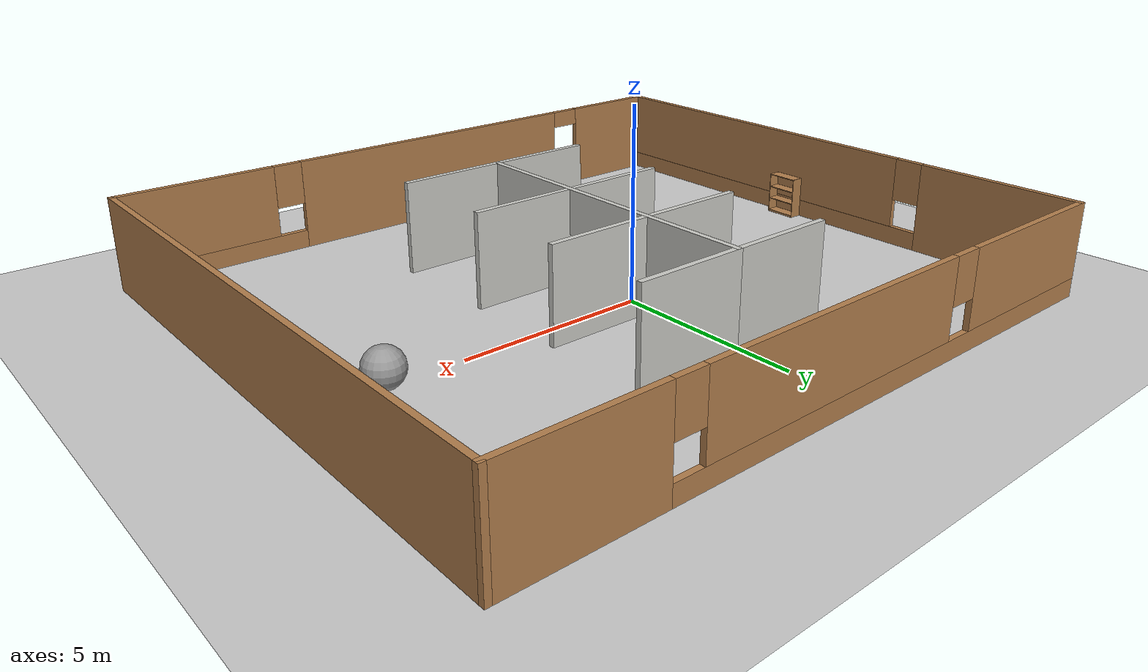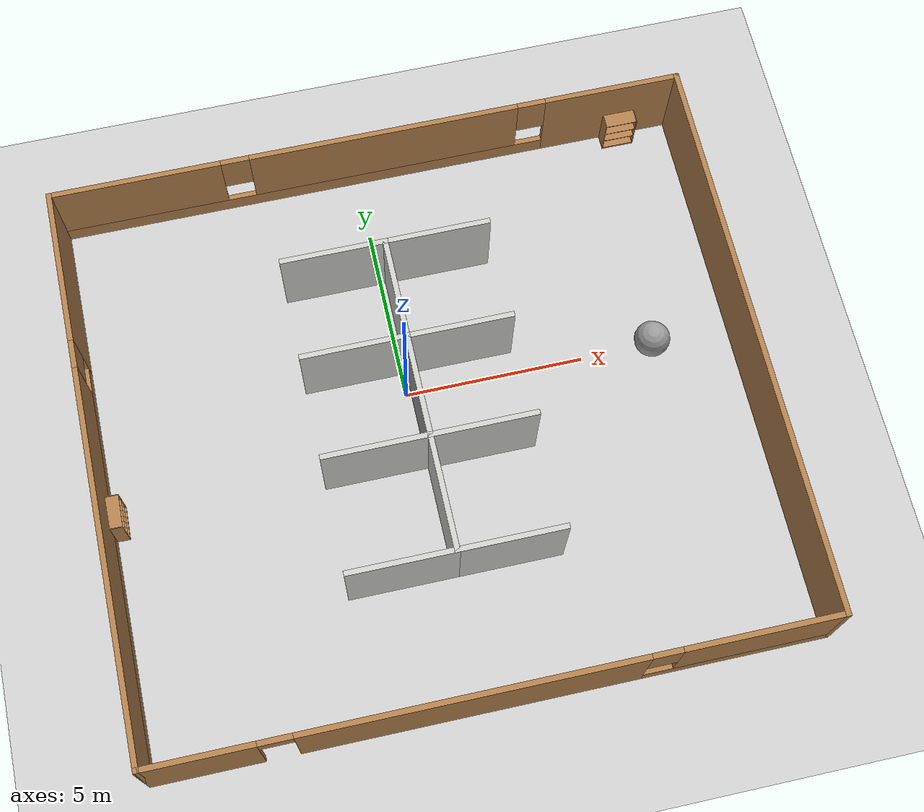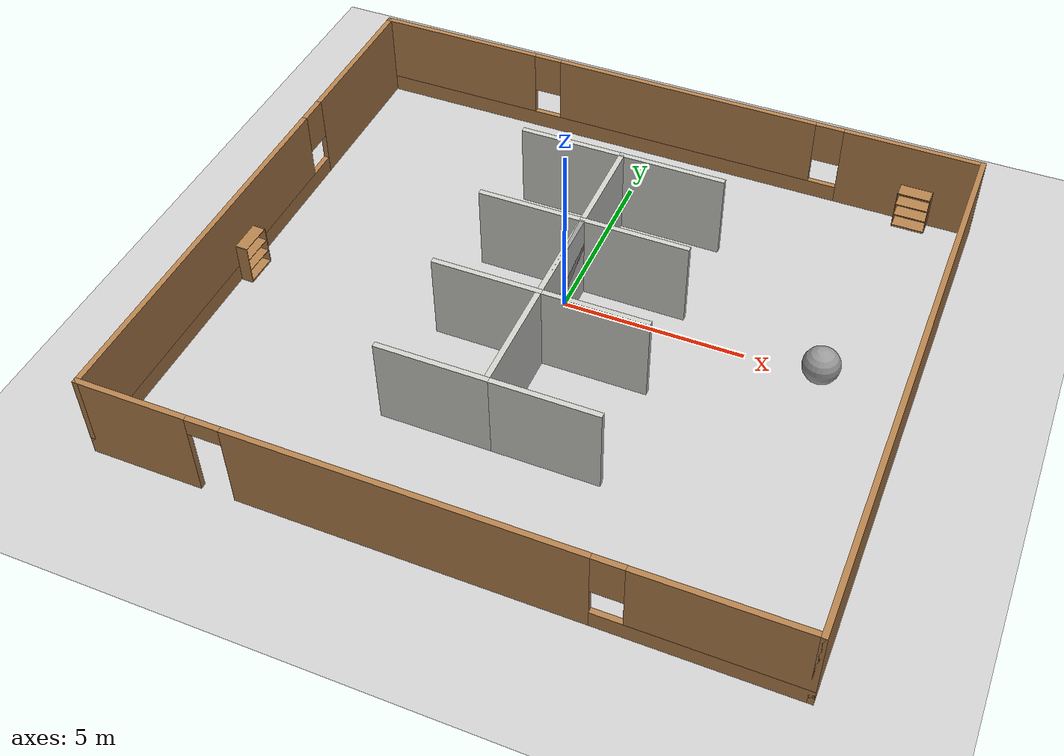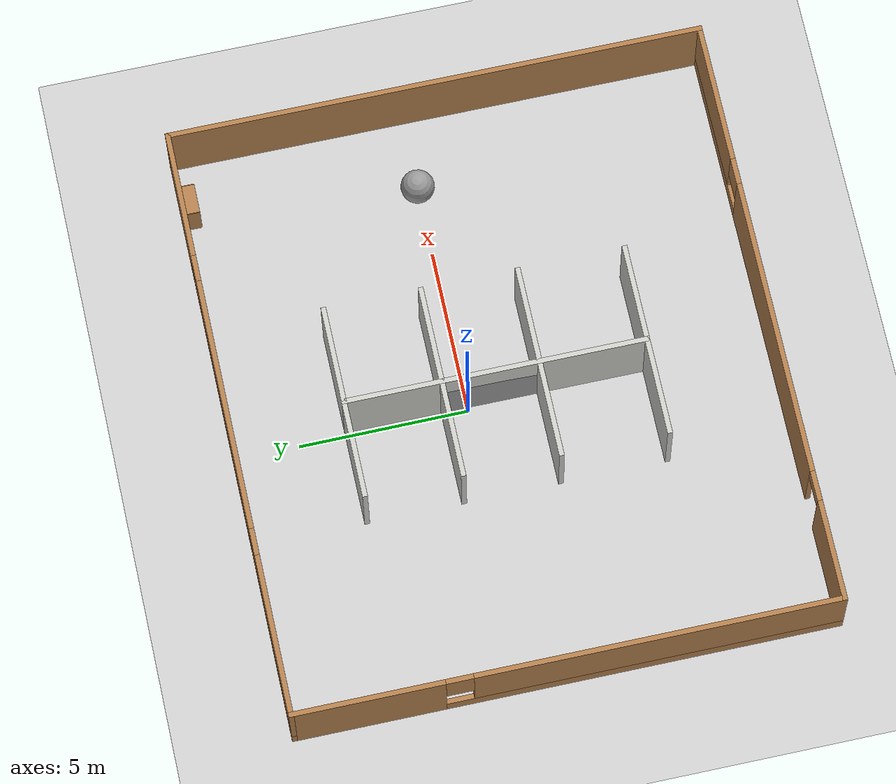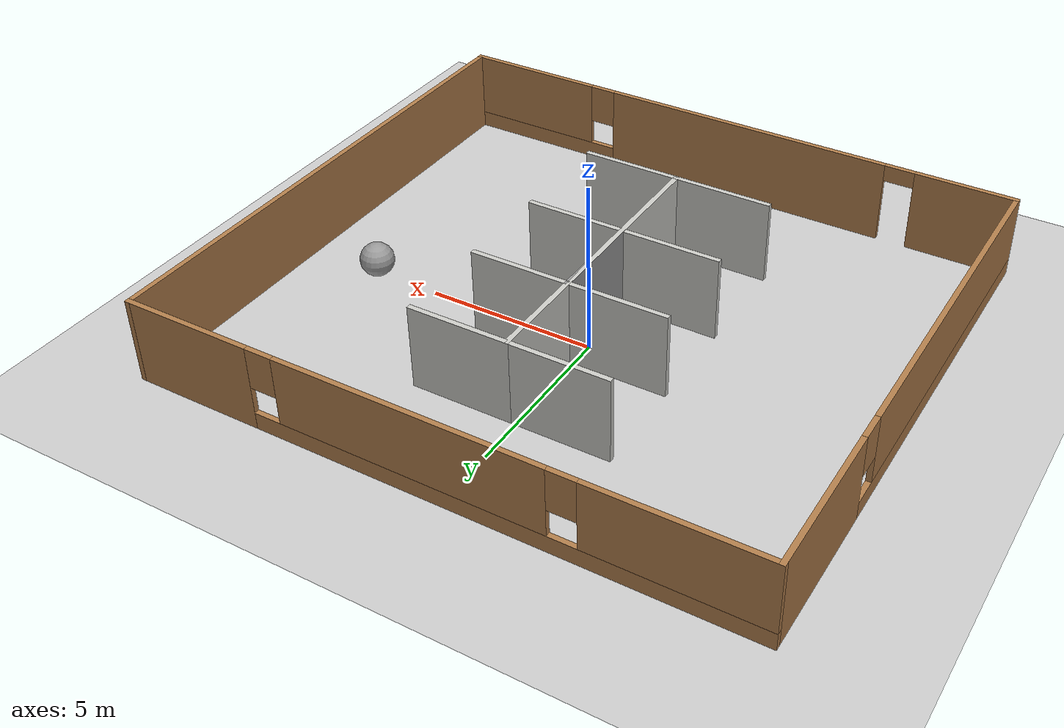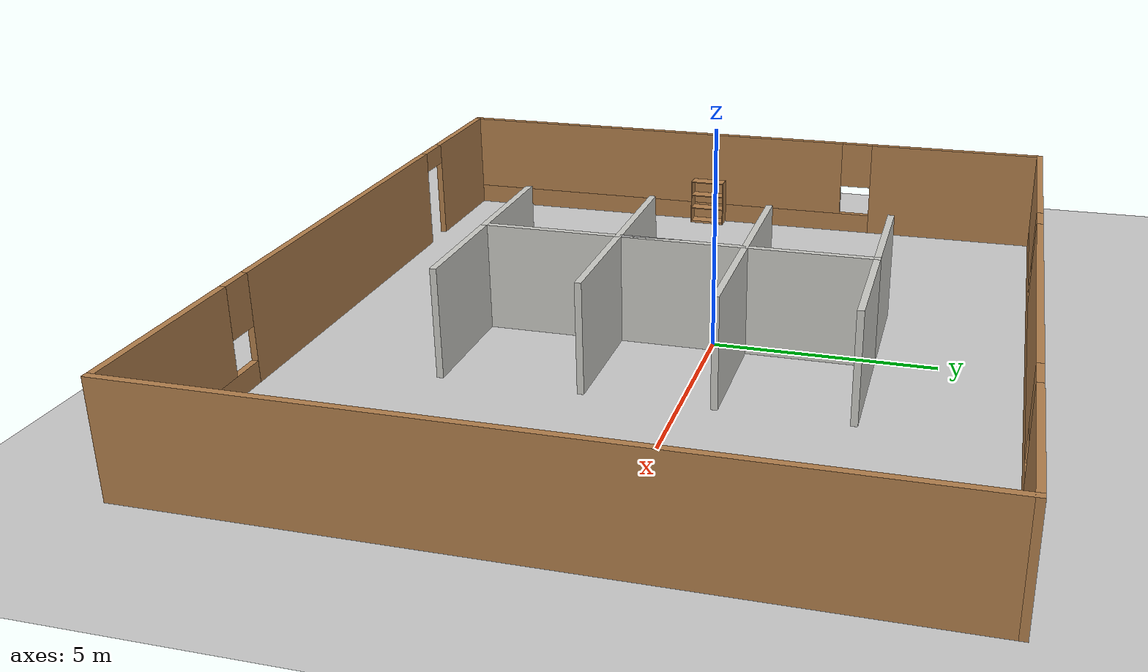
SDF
<sdf version="1.6">
 <world name="default">
  <light name="sun" type="directional">
   <pose>0 0 10 0 -0 0</pose>
   <diffuse>0.8 0.8 0.8 1</diffuse>
   <specular>0.1 0.1 0.1 1</specular>
   <attenuation>
    <range>1000</range>
    <constant>0.9</constant>
    <linear>0.01</linear>
    <quadratic>0.001</quadratic>
   </attenuation>
   <direction>-0.5 0.5 -1</direction>
  </light>
  <model name="ground_plane">
   <static>1</static>
   <link name="link">
    <collision name="collision">
     <geometry><plane><normal>0 0 1</normal><size>100 100</size></plane></geometry>
     <surface><friction><ode><mu>100</mu><mu2>50</mu2></ode></friction></surface>
    </collision>
    <visual name="visual">
     <cast_shadows>0</cast_shadows>
     <geometry><plane><normal>0 0 1</normal><size>100 100</size></plane></geometry>
     <material>
      <script><uri>file://media/materials/scripts/gazebo.material</uri><name>Gazebo/Grey</name></script>
     </material>
    </visual>
   </link>
  </model>
  <gravity>0 0 -9.8</gravity>
  <magnetic_field>6e-06 2.3e-05 -4.2e-05</magnetic_field>
  <atmosphere type="adiabatic"/>
  <physics name="default_physics" default="0" type="ode">
   <max_step_size>0.001</max_step_size>
   <real_time_factor>1</real_time_factor>
   <real_time_update_rate>1000</real_time_update_rate>
  </physics>
  <scene><ambient>0.4 0.4 0.4 1</ambient><background>0.7 0.7 0.7 1</background><shadows>1</shadows></scene>
  <spherical_coordinates>
   <surface_model>EARTH_WGS84</surface_model>
   <latitude_deg>0</latitude_deg>
   <longitude_deg>0</longitude_deg>
   <elevation>0</elevation>
   <heading_deg>0</heading_deg>
  </spherical_coordinates>
  <model name="lab">
   <pose>0.391716 -1.03345 0 0 -0 0</pose>
   <link name="Wall_14">
    <collision name="Wall_14_Collision">
     <geometry><box><size>9 0.15 2.5</size></box></geometry>
     <pose>0 0 1.25 0 -0 0</pose>
    </collision>
    <visual name="Wall_14_Visual">
     <pose>0 0 1.25 0 -0 0</pose>
     <geometry><box><size>9 0.15 2.5</size></box></geometry>
     <material>
      <script><uri>file://media/materials/scripts/gazebo.material</uri><name>Gazebo/CeilingTiled</name></script>
      <ambient>1 1 1 1</ambient>
     </material>
    </visual>
    <pose>-0.188866 0.174058 0 0 0 -1.5708</pose>
   </link>
   <link name="Wall_15">
    <collision name="Wall_15_Collision">
     <geometry><box><size>3 0.15 2.5</size></box></geometry>
     <pose>0 0 1.25 0 -0 0</pose>
    </collision>
    <visual name="Wall_15_Visual">
     <pose>0 0 1.25 0 -0 0</pose>
     <geometry><box><size>3 0.15 2.5</size></box></geometry>
     <material>
      <script><uri>file://media/materials/scripts/gazebo.material</uri><name>Gazebo/CeilingTiled</name></script>
      <ambient>1 1 1 1</ambient>
     </material>
    </visual>
    <pose>1.23613 -4.25094 0 0 -0 0</pose>
   </link>
   <link name="Wall_17">
    <collision name="Wall_17_Collision">
     <geometry><box><size>3 0.15 2.5</size></box></geometry>
     <pose>0 0 1.25 0 -0 0</pose>
    </collision>
    <visual name="Wall_17_Visual">
     <pose>0 0 1.25 0 -0 0</pose>
     <geometry><box><size>3 0.15 2.5</size></box></geometry>
     <material>
      <script><uri>file://media/materials/scripts/gazebo.material</uri><name>Gazebo/CeilingTiled</name></script>
      <ambient>1 1 1 1</ambient>
     </material>
    </visual>
    <pose>-1.61387 -4.25094 0 0 -0 3.14159</pose>
   </link>
   <link name="Wall_19">
    <collision name="Wall_19_Collision">
     <geometry><box><size>3 0.15 2.5</size></box></geometry>
     <pose>0 0 1.25 0 -0 0</pose>
    </collision>
    <visual name="Wall_19_Visual">
     <pose>0 0 1.25 0 -0 0</pose>
     <geometry><box><size>3 0.15 2.5</size></box></geometry>
     <material>
      <script><uri>file://media/materials/scripts/gazebo.material</uri><name>Gazebo/CeilingTiled</name></script>
      <ambient>1 1 1 1</ambient>
     </material>
    </visual>
    <pose>1.23613 4.59906 0 0 -0 0</pose>
   </link>
   <link name="Wall_25">
    <collision name="Wall_25_Collision">
     <geometry><box><size>3 0.15 2.5</size></box></geometry>
     <pose>0 0 1.25 0 -0 0</pose>
    </collision>
    <visual name="Wall_25_Visual">
     <pose>0 0 1.25 0 -0 0</pose>
     <geometry><box><size>3 0.15 2.5</size></box></geometry>
     <material>
      <script><uri>file://media/materials/scripts/gazebo.material</uri><name>Gazebo/CeilingTiled</name></script>
      <ambient>1 1 1 1</ambient>
     </material>
    </visual>
    <pose>1.23613 1.74906 0 0 -0 0</pose>
   </link>
   <link name="Wall_27">
    <collision name="Wall_27_Collision">
     <geometry><box><size>3 0.15 2.5</size></box></geometry>
     <pose>0 0 1.25 0 -0 0</pose>
    </collision>
    <visual name="Wall_27_Visual">
     <pose>0 0 1.25 0 -0 0</pose>
     <geometry><box><size>3 0.15 2.5</size></box></geometry>
     <material>
      <script><uri>file://media/materials/scripts/gazebo.material</uri><name>Gazebo/Grey</name></script>
      <ambient>1 1 1 1</ambient>
     </material>
    </visual>
    <pose>-0.188866 0.324058 0 0 0 -1.5708</pose>
   </link>
   <link name="Wall_28">
    <collision name="Wall_28_Collision">
     <geometry><box><size>3 0.15 2.5</size></box></geometry>
     <pose>0 0 1.25 0 -0 0</pose>
    </collision>
    <visual name="Wall_28_Visual">
     <pose>0 0 1.25 0 -0 0</pose>
     <geometry><box><size>3 0.15 2.5</size></box></geometry>
     <material>
      <script><uri>file://media/materials/scripts/gazebo.material</uri><name>Gazebo/CeilingTiled</name></script>
      <ambient>1 1 1 1</ambient>
     </material>
    </visual>
    <pose>1.23613 -1.10094 0 0 -0 0</pose>
   </link>
   <link name="Wall_31">
    <collision name="Wall_31_Collision">
     <geometry><box><size>3 0.15 2.5</size></box></geometry>
     <pose>0 0 1.25 0 -0 0</pose>
    </collision>
    <visual name="Wall_31_Visual">
     <pose>0 0 1.25 0 -0 0</pose>
     <geometry><box><size>3 0.15 2.5</size></box></geometry>
     <material>
      <script><uri>file://media/materials/scripts/gazebo.material</uri><name>Gazebo/CeilingTiled</name></script>
      <ambient>1 1 1 1</ambient>
     </material>
    </visual>
    <pose>-1.61387 1.74906 0 0 -0 3.14159</pose>
   </link>
   <link name="Wall_33">
    <collision name="Wall_33_Collision">
     <geometry><box><size>3 0.15 2.5</size></box></geometry>
     <pose>0 0 1.25 0 -0 0</pose>
    </collision>
    <visual name="Wall_33_Visual">
     <pose>0 0 1.25 0 -0 0</pose>
     <geometry><box><size>3 0.15 2.5</size></box></geometry>
     <material>
      <script><uri>file://media/materials/scripts/gazebo.material</uri><name>Gazebo/CeilingTiled</name></script>
      <ambient>1 1 1 1</ambient>
     </material>
    </visual>
    <pose>-1.61387 -1.10094 0 0 -0 3.14159</pose>
   </link>
   <link name="Wall_35">
    <collision name="Wall_35_Collision">
     <geometry><box><size>3 0.15 2.5</size></box></geometry>
     <pose>0 0 1.25 0 -0 0</pose>
    </collision>
    <visual name="Wall_35_Visual">
     <pose>0 0 1.25 0 -0 0</pose>
     <geometry><box><size>3 0.15 2.5</size></box></geometry>
     <material>
      <script><uri>file://media/materials/scripts/gazebo.material</uri><name>Gazebo/CeilingTiled</name></script>
      <ambient>1 1 1 1</ambient>
     </material>
    </visual>
    <pose>-1.61387 4.59906 0 0 -0 3.14159</pose>
   </link>
   <link name="Wall_37">
    <collision name="Wall_37_Collision">
     <geometry><box><size>16 0.15 2.5</size></box></geometry>
     <pose>0 0 1.25 0 -0 0</pose>
    </collision>
    <visual name="Wall_37_Visual">
     <pose>0 0 1.25 0 -0 0</pose>
     <geometry><box><size>16 0.15 2.5</size></box></geometry>
     <material>
      <script><uri>file://media/materials/scripts/gazebo.material</uri><name>Gazebo/Wood</name></script>
      <ambient>1 1 1 1</ambient>
     </material>
    </visual>
    <pose>8.925 0 0 0 -0 1.5708</pose>
   </link>
   <link name="Wall_38">
    <pose>0 7.925 0 0 -0 3.14159</pose>
    <visual name="Wall_38_Visual_0">
     <pose>-7.05152 0 1.25 0 -0 0</pose>
     <geometry><box><size>3.89696 0.15 2.5</size></box></geometry>
     <material>
      <script><uri>file://media/materials/scripts/gazebo.material</uri><name>Gazebo/Wood</name></script>
      <ambient>1 1 1 1</ambient>
     </material>
    </visual>
    <collision name="Wall_38_Collision_0">
     <geometry><box><size>3.89696 0.15 2.5</size></box></geometry>
     <pose>-7.05152 0 1.25 0 -0 0</pose>
    </collision>
    <visual name="Wall_38_Visual_1">
     <pose>1.94848 0 0.25 0 -0 0</pose>
     <geometry><box><size>14.103 0.15 0.5</size></box></geometry>
     <material>
      <script><uri>file://media/materials/scripts/gazebo.material</uri><name>Gazebo/Wood</name></script>
      <ambient>1 1 1 1</ambient>
     </material>
    </visual>
    <collision name="Wall_38_Collision_1">
     <geometry><box><size>14.103 0.15 0.5</size></box></geometry>
     <pose>1.94848 0 0.25 0 -0 0</pose>
    </collision>
    <visual name="Wall_38_Visual_2">
     <pose>-0.475433 0 1.5 0 -0 0</pose>
     <geometry><box><size>7.65522 0.15 2</size></box></geometry>
     <material>
      <script><uri>file://media/materials/scripts/gazebo.material</uri><name>Gazebo/Wood</name></script>
      <ambient>1 1 1 1</ambient>
     </material>
    </visual>
    <collision name="Wall_38_Collision_2">
     <geometry><box><size>7.65522 0.15 2</size></box></geometry>
     <pose>-0.475433 0 1.5 0 -0 0</pose>
    </collision>
    <visual name="Wall_38_Visual_3">
     <pose>6.57609 0 1.5 0 -0 0</pose>
     <geometry><box><size>4.84783 0.15 2</size></box></geometry>
     <material>
      <script><uri>file://media/materials/scripts/gazebo.material</uri><name>Gazebo/Wood</name></script>
      <ambient>1 1 1 1</ambient>
     </material>
    </visual>
    <collision name="Wall_38_Collision_3">
     <geometry><box><size>4.84783 0.15 2</size></box></geometry>
     <pose>6.57609 0 1.5 0 -0 0</pose>
    </collision>
    <visual name="Wall_38_Visual_4">
     <pose>-4.70304 0 1.9 0 -0 0</pose>
     <geometry><box><size>0.8 0.15 1.2</size></box></geometry>
     <material>
      <script><uri>file://media/materials/scripts/gazebo.material</uri><name>Gazebo/Wood</name></script>
      <ambient>1 1 1 1</ambient>
     </material>
    </visual>
    <collision name="Wall_38_Collision_4">
     <geometry><box><size>0.8 0.15 1.2</size></box></geometry>
     <pose>-4.70304 0 1.9 0 -0 0</pose>
    </collision>
    <visual name="Wall_38_Visual_5">
     <pose>3.75217 0 1.9 0 -0 0</pose>
     <geometry><box><size>0.8 0.15 1.2</size></box></geometry>
     <material>
      <script><uri>file://media/materials/scripts/gazebo.material</uri><name>Gazebo/Wood</name></script>
      <ambient>1 1 1 1</ambient>
     </material>
    </visual>
    <collision name="Wall_38_Collision_5">
     <geometry><box><size>0.8 0.15 1.2</size></box></geometry>
     <pose>3.75217 0 1.9 0 -0 0</pose>
    </collision>
   </link>
   <link name="Wall_41">
    <pose>-8.925 0 0 0 0 -1.5708</pose>
    <visual name="Wall_41_Visual_0">
     <pose>-5.7611 0 1.25 0 -0 0</pose>
     <geometry><box><size>4.47781 0.15 2.5</size></box></geometry>
     <material>
      <script><uri>file://media/materials/scripts/gazebo.material</uri><name>Gazebo/Wood</name></script>
      <ambient>1 1 1 1</ambient>
     </material>
    </visual>
    <collision name="Wall_41_Collision_0">
     <geometry><box><size>4.47781 0.15 2.5</size></box></geometry>
     <pose>-5.7611 0 1.25 0 -0 0</pose>
    </collision>
    <visual name="Wall_41_Visual_1">
     <pose>2.2389 0 0.25 0 -0 0</pose>
     <geometry><box><size>11.5222 0.15 0.5</size></box></geometry>
     <material>
      <script><uri>file://media/materials/scripts/gazebo.material</uri><name>Gazebo/Wood</name></script>
      <ambient>1 1 1 1</ambient>
     </material>
    </visual>
    <collision name="Wall_41_Collision_1">
     <geometry><box><size>11.5222 0.15 0.5</size></box></geometry>
     <pose>2.2389 0 0.25 0 -0 0</pose>
    </collision>
    <visual name="Wall_41_Visual_2">
     <pose>2.6389 0 1.5 0 -0 0</pose>
     <geometry><box><size>10.7222 0.15 2</size></box></geometry>
     <material>
      <script><uri>file://media/materials/scripts/gazebo.material</uri><name>Gazebo/Wood</name></script>
      <ambient>1 1 1 1</ambient>
     </material>
    </visual>
    <collision name="Wall_41_Collision_2">
     <geometry><box><size>10.7222 0.15 2</size></box></geometry>
     <pose>2.6389 0 1.5 0 -0 0</pose>
    </collision>
    <visual name="Wall_41_Visual_3">
     <pose>-3.12219 0 1.9 0 -0 0</pose>
     <geometry><box><size>0.8 0.15 1.2</size></box></geometry>
     <material>
      <script><uri>file://media/materials/scripts/gazebo.material</uri><name>Gazebo/Wood</name></script>
      <ambient>1 1 1 1</ambient>
     </material>
    </visual>
    <collision name="Wall_41_Collision_3">
     <geometry><box><size>0.8 0.15 1.2</size></box></geometry>
     <pose>-3.12219 0 1.9 0 -0 0</pose>
    </collision>
   </link>
   <link name="Wall_43">
    <pose>0 -7.925 0 0 -0 0</pose>
    <visual name="Wall_43_Visual_0">
     <pose>-7.49111 0 1.25 0 -0 0</pose>
     <geometry><box><size>3.01778 0.15 2.5</size></box></geometry>
     <material>
      <script><uri>file://media/materials/scripts/gazebo.material</uri><name>Gazebo/Wood</name></script>
      <ambient>1 1 1 1</ambient>
     </material>
    </visual>
    <collision name="Wall_43_Collision_0">
     <geometry><box><size>3.01778 0.15 2.5</size></box></geometry>
     <pose>-7.49111 0 1.25 0 -0 0</pose>
    </collision>
    <visual name="Wall_43_Visual_1">
     <pose>-0.591867 0 1.25 0 -0 0</pose>
     <geometry><box><size>8.98071 0.15 2.5</size></box></geometry>
     <material>
      <script><uri>file://media/materials/scripts/gazebo.material</uri><name>Gazebo/Wood</name></script>
      <ambient>1 1 1 1</ambient>
     </material>
    </visual>
    <collision name="Wall_43_Collision_1">
     <geometry><box><size>8.98071 0.15 2.5</size></box></geometry>
     <pose>-0.591867 0 1.25 0 -0 0</pose>
    </collision>
    <visual name="Wall_43_Visual_2">
     <pose>6.44924 0 0.25 0 -0 0</pose>
     <geometry><box><size>5.10152 0.15 0.5</size></box></geometry>
     <material>
      <script><uri>file://media/materials/scripts/gazebo.material</uri><name>Gazebo/Wood</name></script>
      <ambient>1 1 1 1</ambient>
     </material>
    </visual>
    <collision name="Wall_43_Collision_2">
     <geometry><box><size>5.10152 0.15 0.5</size></box></geometry>
     <pose>6.44924 0 0.25 0 -0 0</pose>
    </collision>
    <visual name="Wall_43_Visual_3">
     <pose>6.84924 0 1.5 0 -0 0</pose>
     <geometry><box><size>4.30152 0.15 2</size></box></geometry>
     <material>
      <script><uri>file://media/materials/scripts/gazebo.material</uri><name>Gazebo/Wood</name></script>
      <ambient>1 1 1 1</ambient>
     </material>
    </visual>
    <collision name="Wall_43_Collision_3">
     <geometry><box><size>4.30152 0.15 2</size></box></geometry>
     <pose>6.84924 0 1.5 0 -0 0</pose>
    </collision>
    <visual name="Wall_43_Visual_4">
     <pose>4.29849 0 1.9 0 -0 0</pose>
     <geometry><box><size>0.8 0.15 1.2</size></box></geometry>
     <material>
      <script><uri>file://media/materials/scripts/gazebo.material</uri><name>Gazebo/Wood</name></script>
      <ambient>1 1 1 1</ambient>
     </material>
    </visual>
    <collision name="Wall_43_Collision_4">
     <geometry><box><size>0.8 0.15 1.2</size></box></geometry>
     <pose>4.29849 0 1.9 0 -0 0</pose>
    </collision>
    <visual name="Wall_43_Visual_5">
     <pose>-5.53222 0 2.25 0 -0 0</pose>
     <geometry><box><size>0.9 0.15 0.5</size></box></geometry>
     <material>
      <script><uri>file://media/materials/scripts/gazebo.material</uri><name>Gazebo/Wood</name></script>
      <ambient>1 1 1 1</ambient>
     </material>
    </visual>
    <collision name="Wall_43_Collision_5">
     <geometry><box><size>0.9 0.15 0.5</size></box></geometry>
     <pose>-5.53222 0 2.25 0 -0 0</pose>
    </collision>
   </link>
   <static>1</static>
  </model>
  <model name="bookshelf">
   <static>1</static>
   <link name="link">
    <inertial><mass>1</mass></inertial>
    <collision name="back">
     <pose>0 0.005 0.6 0 -0 0</pose>
     <geometry><box><size>0.9 0.01 1.2</size></box></geometry>
    </collision>
    <visual name="visual1">
     <pose>0 0.005 0.6 0 -0 0</pose>
     <geometry><box><size>0.9 0.01 1.2</size></box></geometry>
     <material>
      <script><uri>file://media/materials/scripts/gazebo.material</uri><name>Gazebo/Wood</name></script>
     </material>
    </visual>
    <collision name="left_side">
     <pose>0.45 -0.195 0.6 0 -0 0</pose>
     <geometry><box><size>0.02 0.4 1.2</size></box></geometry>
    </collision>
    <visual name="visual2">
     <pose>0.45 -0.195 0.6 0 -0 0</pose>
     <geometry><box><size>0.02 0.4 1.2</size></box></geometry>
     <material>
      <script><uri>file://media/materials/scripts/gazebo.material</uri><name>Gazebo/Wood</name></script>
     </material>
    </visual>
    <collision name="right_side">
     <pose>-0.45 -0.195 0.6 0 -0 0</pose>
     <geometry><box><size>0.02 0.4 1.2</size></box></geometry>
    </collision>
    <visual name="visual3">
     <pose>-0.45 -0.195 0.6 0 -0 0</pose>
     <geometry><box><size>0.02 0.4 1.2</size></box></geometry>
     <material>
      <script><uri>file://media/materials/scripts/gazebo.material</uri><name>Gazebo/Wood</name></script>
     </material>
    </visual>
    <collision name="bottom">
     <pose>0 -0.195 0.03 0 -0 0</pose>
     <geometry><box><size>0.88 0.4 0.06</size></box></geometry>
    </collision>
    <visual name="visual4">
     <pose>0 -0.195 0.03 0 -0 0</pose>
     <geometry><box><size>0.88 0.4 0.06</size></box></geometry>
     <material>
      <script><uri>file://media/materials/scripts/gazebo.material</uri><name>Gazebo/Wood</name></script>
     </material>
    </visual>
    <collision name="top">
     <pose>0 -0.195 1.19 0 -0 0</pose>
     <geometry><box><size>0.88 0.4 0.02</size></box></geometry>
    </collision>
    <visual name="visual5">
     <pose>0 -0.195 1.19 0 -0 0</pose>
     <geometry><box><size>0.88 0.4 0.02</size></box></geometry>
     <material>
      <script><uri>file://media/materials/scripts/gazebo.material</uri><name>Gazebo/Wood</name></script>
     </material>
    </visual>
    <collision name="low_shelf">
     <pose>0 -0.195 0.43 0 -0 0</pose>
     <geometry><box><size>0.88 0.4 0.02</size></box></geometry>
    </collision>
    <visual name="visual6">
     <pose>0 -0.195 0.43 0 -0 0</pose>
     <geometry><box><size>0.88 0.4 0.02</size></box></geometry>
     <material>
      <script><uri>file://media/materials/scripts/gazebo.material</uri><name>Gazebo/Wood</name></script>
     </material>
    </visual>
    <collision name="high_shelf">
     <pose>0 -0.195 0.8 0 -0 0</pose>
     <geometry><box><size>0.88 0.4 0.02</size></box></geometry>
    </collision>
    <visual name="visual7">
     <pose>0 -0.195 0.8 0 -0 0</pose>
     <geometry><box><size>0.88 0.4 0.02</size></box></geometry>
     <material>
      <script><uri>file://media/materials/scripts/gazebo.material</uri><name>Gazebo/Wood</name></script>
     </material>
    </visual>
   </link>
   <pose>-8.5 -2 0 0 -0 1.55</pose>
  </model>
  <model name="bookshelf_0">
   <static>1</static>
   <link name="link">
    <inertial><mass>1</mass></inertial>
    <collision name="back">
     <pose>0 0.005 0.6 0 -0 0</pose>
     <geometry><box><size>0.9 0.01 1.2</size></box></geometry>
    </collision>
    <visual name="visual1">
     <pose>0 0.005 0.6 0 -0 0</pose>
     <geometry><box><size>0.9 0.01 1.2</size></box></geometry>
     <material>
      <script><uri>file://media/materials/scripts/gazebo.material</uri><name>Gazebo/Wood</name></script>
     </material>
    </visual>
    <collision name="left_side">
     <pose>0.45 -0.195 0.6 0 -0 0</pose>
     <geometry><box><size>0.02 0.4 1.2</size></box></geometry>
    </collision>
    <visual name="visual2">
     <pose>0.45 -0.195 0.6 0 -0 0</pose>
     <geometry><box><size>0.02 0.4 1.2</size></box></geometry>
     <material>
      <script><uri>file://media/materials/scripts/gazebo.material</uri><name>Gazebo/Wood</name></script>
     </material>
    </visual>
    <collision name="right_side">
     <pose>-0.45 -0.195 0.6 0 -0 0</pose>
     <geometry><box><size>0.02 0.4 1.2</size></box></geometry>
    </collision>
    <visual name="visual3">
     <pose>-0.45 -0.195 0.6 0 -0 0</pose>
     <geometry><box><size>0.02 0.4 1.2</size></box></geometry>
     <material>
      <script><uri>file://media/materials/scripts/gazebo.material</uri><name>Gazebo/Wood</name></script>
     </material>
    </visual>
    <collision name="bottom">
     <pose>0 -0.195 0.03 0 -0 0</pose>
     <geometry><box><size>0.88 0.4 0.06</size></box></geometry>
    </collision>
    <visual name="visual4">
     <pose>0 -0.195 0.03 0 -0 0</pose>
     <geometry><box><size>0.88 0.4 0.06</size></box></geometry>
     <material>
      <script><uri>file://media/materials/scripts/gazebo.material</uri><name>Gazebo/Wood</name></script>
     </material>
    </visual>
    <collision name="top">
     <pose>0 -0.195 1.19 0 -0 0</pose>
     <geometry><box><size>0.88 0.4 0.02</size></box></geometry>
    </collision>
    <visual name="visual5">
     <pose>0 -0.195 1.19 0 -0 0</pose>
     <geometry><box><size>0.88 0.4 0.02</size></box></geometry>
     <material>
      <script><uri>file://media/materials/scripts/gazebo.material</uri><name>Gazebo/Wood</name></script>
     </material>
    </visual>
    <collision name="low_shelf">
     <pose>0 -0.195 0.43 0 -0 0</pose>
     <geometry><box><size>0.88 0.4 0.02</size></box></geometry>
    </collision>
    <visual name="visual6">
     <pose>0 -0.195 0.43 0 -0 0</pose>
     <geometry><box><size>0.88 0.4 0.02</size></box></geometry>
     <material>
      <script><uri>file://media/materials/scripts/gazebo.material</uri><name>Gazebo/Wood</name></script>
     </material>
    </visual>
    <collision name="high_shelf">
     <pose>0 -0.195 0.8 0 -0 0</pose>
     <geometry><box><size>0.88 0.4 0.02</size></box></geometry>
    </collision>
    <visual name="visual7">
     <pose>0 -0.195 0.8 0 -0 0</pose>
     <geometry><box><size>0.88 0.4 0.02</size></box></geometry>
     <material>
      <script><uri>file://media/materials/scripts/gazebo.material</uri><name>Gazebo/Wood</name></script>
     </material>
    </visual>
   </link>
   <pose>7.74912 6.8078 0 0 -0 0</pose>
  </model>
  <model name="unit_sphere_0">
   <pose>7 0 0.5 0 -0 0</pose>
   <link name="link">
    <inertial>
     <mass>1</mass>
     <inertia><ixx>0.1</ixx><ixy>0</ixy><ixz>0</ixz><iyy>0.1</iyy><iyz>0</iyz><izz>0.1</izz></inertia>
    </inertial>
    <collision name="collision"><geometry><sphere><radius>0.5</radius></sphere></geometry></collision>
    <visual name="visual">
     <geometry><sphere><radius>0.5</radius></sphere></geometry>
     <material>
      <script><name>Gazebo/Grey</name><uri>file://media/materials/scripts/gazebo.material</uri></script>
     </material>
    </visual>
   </link>
  </model>
 </world>
</sdf>
